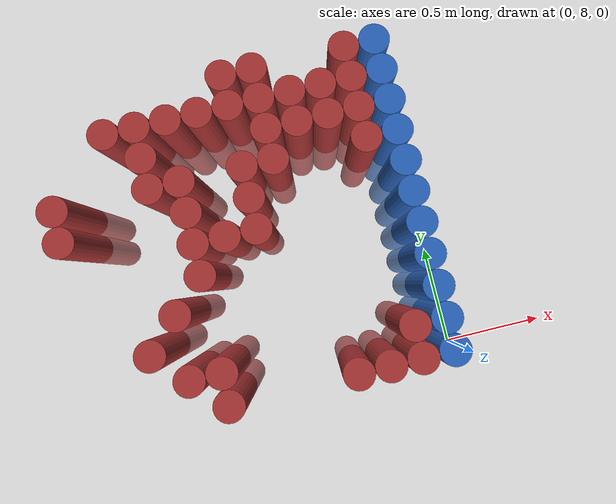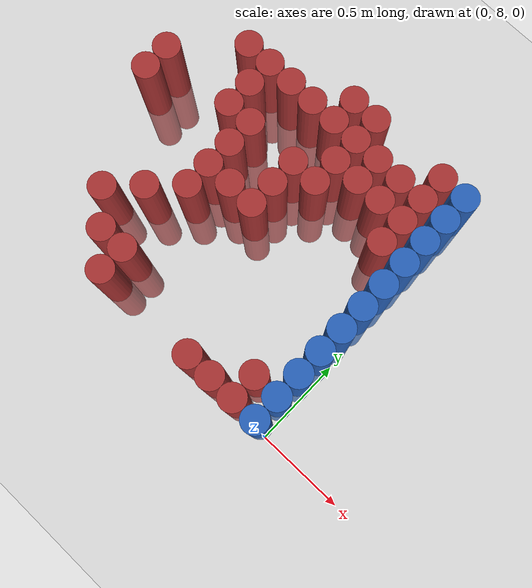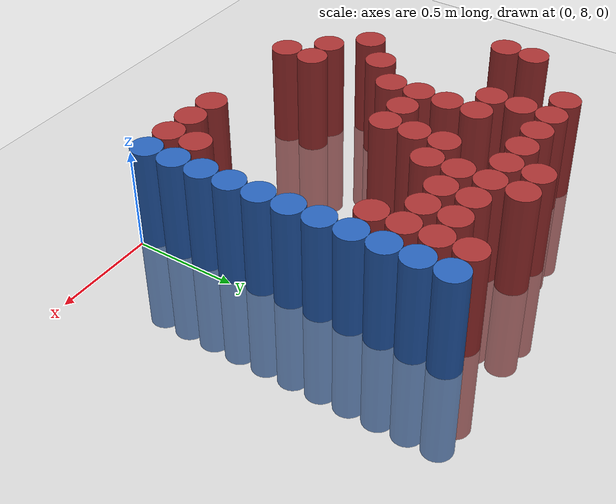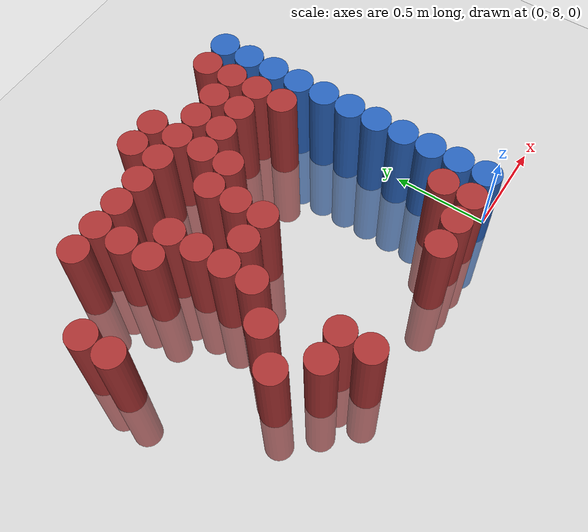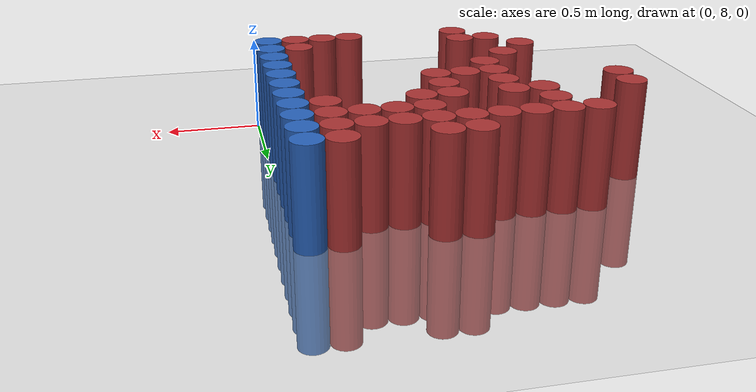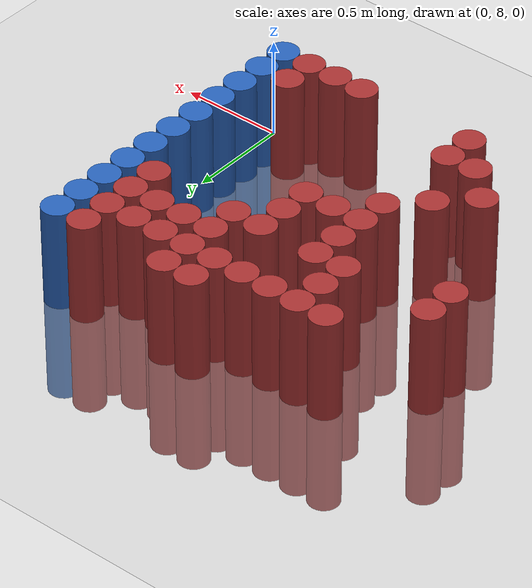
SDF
<sdf version="1.6">
 <world name="default">
  <model name="ground_plane">
   <static>1</static>
   <link name="link">
    <collision name="collision">
     <geometry><plane><normal>0 0 1</normal><size>100 100</size></plane></geometry>
     <surface><friction><ode><mu>100</mu><mu2>50</mu2></ode></friction></surface>
    </collision>
    <visual name="visual">
     <cast_shadows>0</cast_shadows>
     <geometry><plane><normal>0 0 1</normal><size>100 100</size></plane></geometry>
     <material>
      <script><uri>file://media/materials/scripts/gazebo.material</uri><name>Gazebo/Grey</name></script>
     </material>
    </visual>
   </link>
  </model>
  <model name="unit_cylinder_236">
   <static>1</static>
   <pose>-1.725000 8.925000 0.000000 0.000000 0.000000 0.000000</pose>
   <link name="link">
    <inertial>
     <mass>1</mass>
     <inertia><ixx>0.145833</ixx><ixy>0</ixy><ixz>0</ixz><iyy>0.145833</iyy><iyz>0</iyz><izz>0.125</izz></inertia>
    </inertial>
    <collision name="collision">
     <geometry><cylinder><radius>0.075000</radius><length>1</length></cylinder></geometry>
    </collision>
    <visual name="visual">
     <geometry><cylinder><radius>0.075000</radius><length>1</length></cylinder></geometry>
     <material>
      <ambient>0.648000 0.192000 0.192000 1</ambient>
      <diffuse>0.648000 0.192000 0.192000 1</diffuse>
     </material>
     <material>
      <script><name>Gazebo/Grey</name><uri>file://media/materials/scripts/gazebo.material</uri></script>
     </material>
    </visual>
   </link>
  </model>
  <model name="unit_cylinder_237">
   <static>1</static>
   <pose>-1.725000 9.075000 0.000000 0.000000 0.000000 0.000000</pose>
   <link name="link">
    <inertial>
     <mass>1</mass>
     <inertia><ixx>0.145833</ixx><ixy>0</ixy><ixz>0</ixz><iyy>0.145833</iyy><iyz>0</iyz><izz>0.125</izz></inertia>
    </inertial>
    <collision name="collision">
     <geometry><cylinder><radius>0.075000</radius><length>1</length></cylinder></geometry>
    </collision>
    <visual name="visual">
     <geometry><cylinder><radius>0.075000</radius><length>1</length></cylinder></geometry>
     <material>
      <ambient>0.648000 0.192000 0.192000 1</ambient>
      <diffuse>0.648000 0.192000 0.192000 1</diffuse>
     </material>
     <material>
      <script><name>Gazebo/Grey</name><uri>file://media/materials/scripts/gazebo.material</uri></script>
     </material>
    </visual>
   </link>
  </model>
  <model name="unit_cylinder_247">
   <static>1</static>
   <pose>-1.425000 8.325000 0.000000 0.000000 0.000000 0.000000</pose>
   <link name="link">
    <inertial>
     <mass>1</mass>
     <inertia><ixx>0.145833</ixx><ixy>0</ixy><ixz>0</ixz><iyy>0.145833</iyy><iyz>0</iyz><izz>0.125</izz></inertia>
    </inertial>
    <collision name="collision">
     <geometry><cylinder><radius>0.075000</radius><length>1</length></cylinder></geometry>
    </collision>
    <visual name="visual">
     <geometry><cylinder><radius>0.075000</radius><length>1</length></cylinder></geometry>
     <material>
      <ambient>0.648000 0.192000 0.192000 1</ambient>
      <diffuse>0.648000 0.192000 0.192000 1</diffuse>
     </material>
     <material>
      <script><name>Gazebo/Grey</name><uri>file://media/materials/scripts/gazebo.material</uri></script>
     </material>
    </visual>
   </link>
  </model>
  <model name="unit_cylinder_248">
   <static>1</static>
   <pose>-1.425000 9.375000 0.000000 0.000000 0.000000 0.000000</pose>
   <link name="link">
    <inertial>
     <mass>1</mass>
     <inertia><ixx>0.145833</ixx><ixy>0</ixy><ixz>0</ixz><iyy>0.145833</iyy><iyz>0</iyz><izz>0.125</izz></inertia>
    </inertial>
    <collision name="collision">
     <geometry><cylinder><radius>0.075000</radius><length>1</length></cylinder></geometry>
    </collision>
    <visual name="visual">
     <geometry><cylinder><radius>0.075000</radius><length>1</length></cylinder></geometry>
     <material>
      <ambient>0.648000 0.192000 0.192000 1</ambient>
      <diffuse>0.648000 0.192000 0.192000 1</diffuse>
     </material>
     <material>
      <script><name>Gazebo/Grey</name><uri>file://media/materials/scripts/gazebo.material</uri></script>
     </material>
    </visual>
   </link>
  </model>
  <model name="unit_cylinder_252">
   <static>1</static>
   <pose>-1.275000 8.175000 0.000000 0.000000 0.000000 0.000000</pose>
   <link name="link">
    <inertial>
     <mass>1</mass>
     <inertia><ixx>0.145833</ixx><ixy>0</ixy><ixz>0</ixz><iyy>0.145833</iyy><iyz>0</iyz><izz>0.125</izz></inertia>
    </inertial>
    <collision name="collision">
     <geometry><cylinder><radius>0.075000</radius><length>1</length></cylinder></geometry>
    </collision>
    <visual name="visual">
     <geometry><cylinder><radius>0.075000</radius><length>1</length></cylinder></geometry>
     <material>
      <ambient>0.648000 0.192000 0.192000 1</ambient>
      <diffuse>0.648000 0.192000 0.192000 1</diffuse>
     </material>
     <material>
      <script><name>Gazebo/Grey</name><uri>file://media/materials/scripts/gazebo.material</uri></script>
     </material>
    </visual>
   </link>
  </model>
  <model name="unit_cylinder_253">
   <static>1</static>
   <pose>-1.275000 8.475000 0.000000 0.000000 0.000000 0.000000</pose>
   <link name="link">
    <inertial>
     <mass>1</mass>
     <inertia><ixx>0.145833</ixx><ixy>0</ixy><ixz>0</ixz><iyy>0.145833</iyy><iyz>0</iyz><izz>0.125</izz></inertia>
    </inertial>
    <collision name="collision">
     <geometry><cylinder><radius>0.075000</radius><length>1</length></cylinder></geometry>
    </collision>
    <visual name="visual">
     <geometry><cylinder><radius>0.075000</radius><length>1</length></cylinder></geometry>
     <material>
      <ambient>0.648000 0.192000 0.192000 1</ambient>
      <diffuse>0.648000 0.192000 0.192000 1</diffuse>
     </material>
     <material>
      <script><name>Gazebo/Grey</name><uri>file://media/materials/scripts/gazebo.material</uri></script>
     </material>
    </visual>
   </link>
  </model>
  <model name="unit_cylinder_254">
   <static>1</static>
   <pose>-1.275000 9.075000 0.000000 0.000000 0.000000 0.000000</pose>
   <link name="link">
    <inertial>
     <mass>1</mass>
     <inertia><ixx>0.145833</ixx><ixy>0</ixy><ixz>0</ixz><iyy>0.145833</iyy><iyz>0</iyz><izz>0.125</izz></inertia>
    </inertial>
    <collision name="collision">
     <geometry><cylinder><radius>0.075000</radius><length>1</length></cylinder></geometry>
    </collision>
    <visual name="visual">
     <geometry><cylinder><radius>0.075000</radius><length>1</length></cylinder></geometry>
     <material>
      <ambient>0.648000 0.192000 0.192000 1</ambient>
      <diffuse>0.648000 0.192000 0.192000 1</diffuse>
     </material>
     <material>
      <script><name>Gazebo/Grey</name><uri>file://media/materials/scripts/gazebo.material</uri></script>
     </material>
    </visual>
   </link>
  </model>
  <model name="unit_cylinder_255">
   <static>1</static>
   <pose>-1.275000 9.225000 0.000000 0.000000 0.000000 0.000000</pose>
   <link name="link">
    <inertial>
     <mass>1</mass>
     <inertia><ixx>0.145833</ixx><ixy>0</ixy><ixz>0</ixz><iyy>0.145833</iyy><iyz>0</iyz><izz>0.125</izz></inertia>
    </inertial>
    <collision name="collision">
     <geometry><cylinder><radius>0.075000</radius><length>1</length></cylinder></geometry>
    </collision>
    <visual name="visual">
     <geometry><cylinder><radius>0.075000</radius><length>1</length></cylinder></geometry>
     <material>
      <ambient>0.648000 0.192000 0.192000 1</ambient>
      <diffuse>0.648000 0.192000 0.192000 1</diffuse>
     </material>
     <material>
      <script><name>Gazebo/Grey</name><uri>file://media/materials/scripts/gazebo.material</uri></script>
     </material>
    </visual>
   </link>
  </model>
  <model name="unit_cylinder_256">
   <static>1</static>
   <pose>-1.275000 9.375000 0.000000 0.000000 0.000000 0.000000</pose>
   <link name="link">
    <inertial>
     <mass>1</mass>
     <inertia><ixx>0.145833</ixx><ixy>0</ixy><ixz>0</ixz><iyy>0.145833</iyy><iyz>0</iyz><izz>0.125</izz></inertia>
    </inertial>
    <collision name="collision">
     <geometry><cylinder><radius>0.075000</radius><length>1</length></cylinder></geometry>
    </collision>
    <visual name="visual">
     <geometry><cylinder><radius>0.075000</radius><length>1</length></cylinder></geometry>
     <material>
      <ambient>0.648000 0.192000 0.192000 1</ambient>
      <diffuse>0.648000 0.192000 0.192000 1</diffuse>
     </material>
     <material>
      <script><name>Gazebo/Grey</name><uri>file://media/materials/scripts/gazebo.material</uri></script>
     </material>
    </visual>
   </link>
  </model>
  <model name="unit_cylinder_260">
   <static>1</static>
   <pose>-1.125000 8.025000 0.000000 0.000000 0.000000 0.000000</pose>
   <link name="link">
    <inertial>
     <mass>1</mass>
     <inertia><ixx>0.145833</ixx><ixy>0</ixy><ixz>0</ixz><iyy>0.145833</iyy><iyz>0</iyz><izz>0.125</izz></inertia>
    </inertial>
    <collision name="collision">
     <geometry><cylinder><radius>0.075000</radius><length>1</length></cylinder></geometry>
    </collision>
    <visual name="visual">
     <geometry><cylinder><radius>0.075000</radius><length>1</length></cylinder></geometry>
     <material>
      <ambient>0.648000 0.192000 0.192000 1</ambient>
      <diffuse>0.648000 0.192000 0.192000 1</diffuse>
     </material>
     <material>
      <script><name>Gazebo/Grey</name><uri>file://media/materials/scripts/gazebo.material</uri></script>
     </material>
    </visual>
   </link>
  </model>
  <model name="unit_cylinder_261">
   <static>1</static>
   <pose>-1.125000 8.175000 0.000000 0.000000 0.000000 0.000000</pose>
   <link name="link">
    <inertial>
     <mass>1</mass>
     <inertia><ixx>0.145833</ixx><ixy>0</ixy><ixz>0</ixz><iyy>0.145833</iyy><iyz>0</iyz><izz>0.125</izz></inertia>
    </inertial>
    <collision name="collision">
     <geometry><cylinder><radius>0.075000</radius><length>1</length></cylinder></geometry>
    </collision>
    <visual name="visual">
     <geometry><cylinder><radius>0.075000</radius><length>1</length></cylinder></geometry>
     <material>
      <ambient>0.648000 0.192000 0.192000 1</ambient>
      <diffuse>0.648000 0.192000 0.192000 1</diffuse>
     </material>
     <material>
      <script><name>Gazebo/Grey</name><uri>file://media/materials/scripts/gazebo.material</uri></script>
     </material>
    </visual>
   </link>
  </model>
  <model name="unit_cylinder_262">
   <static>1</static>
   <pose>-1.125000 8.625000 0.000000 0.000000 0.000000 0.000000</pose>
   <link name="link">
    <inertial>
     <mass>1</mass>
     <inertia><ixx>0.145833</ixx><ixy>0</ixy><ixz>0</ixz><iyy>0.145833</iyy><iyz>0</iyz><izz>0.125</izz></inertia>
    </inertial>
    <collision name="collision">
     <geometry><cylinder><radius>0.075000</radius><length>1</length></cylinder></geometry>
    </collision>
    <visual name="visual">
     <geometry><cylinder><radius>0.075000</radius><length>1</length></cylinder></geometry>
     <material>
      <ambient>0.648000 0.192000 0.192000 1</ambient>
      <diffuse>0.648000 0.192000 0.192000 1</diffuse>
     </material>
     <material>
      <script><name>Gazebo/Grey</name><uri>file://media/materials/scripts/gazebo.material</uri></script>
     </material>
    </visual>
   </link>
  </model>
  <model name="unit_cylinder_263">
   <static>1</static>
   <pose>-1.125000 8.775000 0.000000 0.000000 0.000000 0.000000</pose>
   <link name="link">
    <inertial>
     <mass>1</mass>
     <inertia><ixx>0.145833</ixx><ixy>0</ixy><ixz>0</ixz><iyy>0.145833</iyy><iyz>0</iyz><izz>0.125</izz></inertia>
    </inertial>
    <collision name="collision">
     <geometry><cylinder><radius>0.075000</radius><length>1</length></cylinder></geometry>
    </collision>
    <visual name="visual">
     <geometry><cylinder><radius>0.075000</radius><length>1</length></cylinder></geometry>
     <material>
      <ambient>0.648000 0.192000 0.192000 1</ambient>
      <diffuse>0.648000 0.192000 0.192000 1</diffuse>
     </material>
     <material>
      <script><name>Gazebo/Grey</name><uri>file://media/materials/scripts/gazebo.material</uri></script>
     </material>
    </visual>
   </link>
  </model>
  <model name="unit_cylinder_264">
   <static>1</static>
   <pose>-1.125000 8.925000 0.000000 0.000000 0.000000 0.000000</pose>
   <link name="link">
    <inertial>
     <mass>1</mass>
     <inertia><ixx>0.145833</ixx><ixy>0</ixy><ixz>0</ixz><iyy>0.145833</iyy><iyz>0</iyz><izz>0.125</izz></inertia>
    </inertial>
    <collision name="collision">
     <geometry><cylinder><radius>0.075000</radius><length>1</length></cylinder></geometry>
    </collision>
    <visual name="visual">
     <geometry><cylinder><radius>0.075000</radius><length>1</length></cylinder></geometry>
     <material>
      <ambient>0.648000 0.192000 0.192000 1</ambient>
      <diffuse>0.648000 0.192000 0.192000 1</diffuse>
     </material>
     <material>
      <script><name>Gazebo/Grey</name><uri>file://media/materials/scripts/gazebo.material</uri></script>
     </material>
    </visual>
   </link>
  </model>
  <model name="unit_cylinder_265">
   <static>1</static>
   <pose>-1.125000 9.075000 0.000000 0.000000 0.000000 0.000000</pose>
   <link name="link">
    <inertial>
     <mass>1</mass>
     <inertia><ixx>0.145833</ixx><ixy>0</ixy><ixz>0</ixz><iyy>0.145833</iyy><iyz>0</iyz><izz>0.125</izz></inertia>
    </inertial>
    <collision name="collision">
     <geometry><cylinder><radius>0.075000</radius><length>1</length></cylinder></geometry>
    </collision>
    <visual name="visual">
     <geometry><cylinder><radius>0.075000</radius><length>1</length></cylinder></geometry>
     <material>
      <ambient>0.648000 0.192000 0.192000 1</ambient>
      <diffuse>0.648000 0.192000 0.192000 1</diffuse>
     </material>
     <material>
      <script><name>Gazebo/Grey</name><uri>file://media/materials/scripts/gazebo.material</uri></script>
     </material>
    </visual>
   </link>
  </model>
  <model name="unit_cylinder_266">
   <static>1</static>
   <pose>-1.125000 9.375000 0.000000 0.000000 0.000000 0.000000</pose>
   <link name="link">
    <inertial>
     <mass>1</mass>
     <inertia><ixx>0.145833</ixx><ixy>0</ixy><ixz>0</ixz><iyy>0.145833</iyy><iyz>0</iyz><izz>0.125</izz></inertia>
    </inertial>
    <collision name="collision">
     <geometry><cylinder><radius>0.075000</radius><length>1</length></cylinder></geometry>
    </collision>
    <visual name="visual">
     <geometry><cylinder><radius>0.075000</radius><length>1</length></cylinder></geometry>
     <material>
      <ambient>0.648000 0.192000 0.192000 1</ambient>
      <diffuse>0.648000 0.192000 0.192000 1</diffuse>
     </material>
     <material>
      <script><name>Gazebo/Grey</name><uri>file://media/materials/scripts/gazebo.material</uri></script>
     </material>
    </visual>
   </link>
  </model>
  <model name="unit_cylinder_271">
   <static>1</static>
   <pose>-0.975000 8.775000 0.000000 0.000000 0.000000 0.000000</pose>
   <link name="link">
    <inertial>
     <mass>1</mass>
     <inertia><ixx>0.145833</ixx><ixy>0</ixy><ixz>0</ixz><iyy>0.145833</iyy><iyz>0</iyz><izz>0.125</izz></inertia>
    </inertial>
    <collision name="collision">
     <geometry><cylinder><radius>0.075000</radius><length>1</length></cylinder></geometry>
    </collision>
    <visual name="visual">
     <geometry><cylinder><radius>0.075000</radius><length>1</length></cylinder></geometry>
     <material>
      <ambient>0.648000 0.192000 0.192000 1</ambient>
      <diffuse>0.648000 0.192000 0.192000 1</diffuse>
     </material>
     <material>
      <script><name>Gazebo/Grey</name><uri>file://media/materials/scripts/gazebo.material</uri></script>
     </material>
    </visual>
   </link>
  </model>
  <model name="unit_cylinder_272">
   <static>1</static>
   <pose>-0.975000 9.375000 0.000000 0.000000 0.000000 0.000000</pose>
   <link name="link">
    <inertial>
     <mass>1</mass>
     <inertia><ixx>0.145833</ixx><ixy>0</ixy><ixz>0</ixz><iyy>0.145833</iyy><iyz>0</iyz><izz>0.125</izz></inertia>
    </inertial>
    <collision name="collision">
     <geometry><cylinder><radius>0.075000</radius><length>1</length></cylinder></geometry>
    </collision>
    <visual name="visual">
     <geometry><cylinder><radius>0.075000</radius><length>1</length></cylinder></geometry>
     <material>
      <ambient>0.648000 0.192000 0.192000 1</ambient>
      <diffuse>0.648000 0.192000 0.192000 1</diffuse>
     </material>
     <material>
      <script><name>Gazebo/Grey</name><uri>file://media/materials/scripts/gazebo.material</uri></script>
     </material>
    </visual>
   </link>
  </model>
  <model name="unit_cylinder_278">
   <static>1</static>
   <pose>-0.825000 8.775000 0.000000 0.000000 0.000000 0.000000</pose>
   <link name="link">
    <inertial>
     <mass>1</mass>
     <inertia><ixx>0.145833</ixx><ixy>0</ixy><ixz>0</ixz><iyy>0.145833</iyy><iyz>0</iyz><izz>0.125</izz></inertia>
    </inertial>
    <collision name="collision">
     <geometry><cylinder><radius>0.075000</radius><length>1</length></cylinder></geometry>
    </collision>
    <visual name="visual">
     <geometry><cylinder><radius>0.075000</radius><length>1</length></cylinder></geometry>
     <material>
      <ambient>0.648000 0.192000 0.192000 1</ambient>
      <diffuse>0.648000 0.192000 0.192000 1</diffuse>
     </material>
     <material>
      <script><name>Gazebo/Grey</name><uri>file://media/materials/scripts/gazebo.material</uri></script>
     </material>
    </visual>
   </link>
  </model>
  <model name="unit_cylinder_279">
   <static>1</static>
   <pose>-0.825000 8.925000 0.000000 0.000000 0.000000 0.000000</pose>
   <link name="link">
    <inertial>
     <mass>1</mass>
     <inertia><ixx>0.145833</ixx><ixy>0</ixy><ixz>0</ixz><iyy>0.145833</iyy><iyz>0</iyz><izz>0.125</izz></inertia>
    </inertial>
    <collision name="collision">
     <geometry><cylinder><radius>0.075000</radius><length>1</length></cylinder></geometry>
    </collision>
    <visual name="visual">
     <geometry><cylinder><radius>0.075000</radius><length>1</length></cylinder></geometry>
     <material>
      <ambient>0.648000 0.192000 0.192000 1</ambient>
      <diffuse>0.648000 0.192000 0.192000 1</diffuse>
     </material>
     <material>
      <script><name>Gazebo/Grey</name><uri>file://media/materials/scripts/gazebo.material</uri></script>
     </material>
    </visual>
   </link>
  </model>
  <model name="unit_cylinder_280">
   <static>1</static>
   <pose>-0.825000 9.075000 0.000000 0.000000 0.000000 0.000000</pose>
   <link name="link">
    <inertial>
     <mass>1</mass>
     <inertia><ixx>0.145833</ixx><ixy>0</ixy><ixz>0</ixz><iyy>0.145833</iyy><iyz>0</iyz><izz>0.125</izz></inertia>
    </inertial>
    <collision name="collision">
     <geometry><cylinder><radius>0.075000</radius><length>1</length></cylinder></geometry>
    </collision>
    <visual name="visual">
     <geometry><cylinder><radius>0.075000</radius><length>1</length></cylinder></geometry>
     <material>
      <ambient>0.648000 0.192000 0.192000 1</ambient>
      <diffuse>0.648000 0.192000 0.192000 1</diffuse>
     </material>
     <material>
      <script><name>Gazebo/Grey</name><uri>file://media/materials/scripts/gazebo.material</uri></script>
     </material>
    </visual>
   </link>
  </model>
  <model name="unit_cylinder_281">
   <static>1</static>
   <pose>-0.825000 9.375000 0.000000 0.000000 0.000000 0.000000</pose>
   <link name="link">
    <inertial>
     <mass>1</mass>
     <inertia><ixx>0.145833</ixx><ixy>0</ixy><ixz>0</ixz><iyy>0.145833</iyy><iyz>0</iyz><izz>0.125</izz></inertia>
    </inertial>
    <collision name="collision">
     <geometry><cylinder><radius>0.075000</radius><length>1</length></cylinder></geometry>
    </collision>
    <visual name="visual">
     <geometry><cylinder><radius>0.075000</radius><length>1</length></cylinder></geometry>
     <material>
      <ambient>0.648000 0.192000 0.192000 1</ambient>
      <diffuse>0.648000 0.192000 0.192000 1</diffuse>
     </material>
     <material>
      <script><name>Gazebo/Grey</name><uri>file://media/materials/scripts/gazebo.material</uri></script>
     </material>
    </visual>
   </link>
  </model>
  <model name="unit_cylinder_282">
   <static>1</static>
   <pose>-0.825000 9.525000 0.000000 0.000000 0.000000 0.000000</pose>
   <link name="link">
    <inertial>
     <mass>1</mass>
     <inertia><ixx>0.145833</ixx><ixy>0</ixy><ixz>0</ixz><iyy>0.145833</iyy><iyz>0</iyz><izz>0.125</izz></inertia>
    </inertial>
    <collision name="collision">
     <geometry><cylinder><radius>0.075000</radius><length>1</length></cylinder></geometry>
    </collision>
    <visual name="visual">
     <geometry><cylinder><radius>0.075000</radius><length>1</length></cylinder></geometry>
     <material>
      <ambient>0.648000 0.192000 0.192000 1</ambient>
      <diffuse>0.648000 0.192000 0.192000 1</diffuse>
     </material>
     <material>
      <script><name>Gazebo/Grey</name><uri>file://media/materials/scripts/gazebo.material</uri></script>
     </material>
    </visual>
   </link>
  </model>
  <model name="unit_cylinder_289">
   <static>1</static>
   <pose>-0.675000 9.075000 0.000000 0.000000 0.000000 0.000000</pose>
   <link name="link">
    <inertial>
     <mass>1</mass>
     <inertia><ixx>0.145833</ixx><ixy>0</ixy><ixz>0</ixz><iyy>0.145833</iyy><iyz>0</iyz><izz>0.125</izz></inertia>
    </inertial>
    <collision name="collision">
     <geometry><cylinder><radius>0.075000</radius><length>1</length></cylinder></geometry>
    </collision>
    <visual name="visual">
     <geometry><cylinder><radius>0.075000</radius><length>1</length></cylinder></geometry>
     <material>
      <ambient>0.648000 0.192000 0.192000 1</ambient>
      <diffuse>0.648000 0.192000 0.192000 1</diffuse>
     </material>
     <material>
      <script><name>Gazebo/Grey</name><uri>file://media/materials/scripts/gazebo.material</uri></script>
     </material>
    </visual>
   </link>
  </model>
  <model name="unit_cylinder_290">
   <static>1</static>
   <pose>-0.675000 9.225000 0.000000 0.000000 0.000000 0.000000</pose>
   <link name="link">
    <inertial>
     <mass>1</mass>
     <inertia><ixx>0.145833</ixx><ixy>0</ixy><ixz>0</ixz><iyy>0.145833</iyy><iyz>0</iyz><izz>0.125</izz></inertia>
    </inertial>
    <collision name="collision">
     <geometry><cylinder><radius>0.075000</radius><length>1</length></cylinder></geometry>
    </collision>
    <visual name="visual">
     <geometry><cylinder><radius>0.075000</radius><length>1</length></cylinder></geometry>
     <material>
      <ambient>0.648000 0.192000 0.192000 1</ambient>
      <diffuse>0.648000 0.192000 0.192000 1</diffuse>
     </material>
     <material>
      <script><name>Gazebo/Grey</name><uri>file://media/materials/scripts/gazebo.material</uri></script>
     </material>
    </visual>
   </link>
  </model>
  <model name="unit_cylinder_291">
   <static>1</static>
   <pose>-0.675000 9.375000 0.000000 0.000000 0.000000 0.000000</pose>
   <link name="link">
    <inertial>
     <mass>1</mass>
     <inertia><ixx>0.145833</ixx><ixy>0</ixy><ixz>0</ixz><iyy>0.145833</iyy><iyz>0</iyz><izz>0.125</izz></inertia>
    </inertial>
    <collision name="collision">
     <geometry><cylinder><radius>0.075000</radius><length>1</length></cylinder></geometry>
    </collision>
    <visual name="visual">
     <geometry><cylinder><radius>0.075000</radius><length>1</length></cylinder></geometry>
     <material>
      <ambient>0.648000 0.192000 0.192000 1</ambient>
      <diffuse>0.648000 0.192000 0.192000 1</diffuse>
     </material>
     <material>
      <script><name>Gazebo/Grey</name><uri>file://media/materials/scripts/gazebo.material</uri></script>
     </material>
    </visual>
   </link>
  </model>
  <model name="unit_cylinder_292">
   <static>1</static>
   <pose>-0.675000 9.525000 0.000000 0.000000 0.000000 0.000000</pose>
   <link name="link">
    <inertial>
     <mass>1</mass>
     <inertia><ixx>0.145833</ixx><ixy>0</ixy><ixz>0</ixz><iyy>0.145833</iyy><iyz>0</iyz><izz>0.125</izz></inertia>
    </inertial>
    <collision name="collision">
     <geometry><cylinder><radius>0.075000</radius><length>1</length></cylinder></geometry>
    </collision>
    <visual name="visual">
     <geometry><cylinder><radius>0.075000</radius><length>1</length></cylinder></geometry>
     <material>
      <ambient>0.648000 0.192000 0.192000 1</ambient>
      <diffuse>0.648000 0.192000 0.192000 1</diffuse>
     </material>
     <material>
      <script><name>Gazebo/Grey</name><uri>file://media/materials/scripts/gazebo.material</uri></script>
     </material>
    </visual>
   </link>
  </model>
  <model name="unit_cylinder_297">
   <static>1</static>
   <pose>-0.525000 8.025000 0.000000 0.000000 0.000000 0.000000</pose>
   <link name="link">
    <inertial>
     <mass>1</mass>
     <inertia><ixx>0.145833</ixx><ixy>0</ixy><ixz>0</ixz><iyy>0.145833</iyy><iyz>0</iyz><izz>0.125</izz></inertia>
    </inertial>
    <collision name="collision">
     <geometry><cylinder><radius>0.075000</radius><length>1</length></cylinder></geometry>
    </collision>
    <visual name="visual">
     <geometry><cylinder><radius>0.075000</radius><length>1</length></cylinder></geometry>
     <material>
      <ambient>0.648000 0.192000 0.192000 1</ambient>
      <diffuse>0.648000 0.192000 0.192000 1</diffuse>
     </material>
     <material>
      <script><name>Gazebo/Grey</name><uri>file://media/materials/scripts/gazebo.material</uri></script>
     </material>
    </visual>
   </link>
  </model>
  <model name="unit_cylinder_298">
   <static>1</static>
   <pose>-0.525000 9.225000 0.000000 0.000000 0.000000 0.000000</pose>
   <link name="link">
    <inertial>
     <mass>1</mass>
     <inertia><ixx>0.145833</ixx><ixy>0</ixy><ixz>0</ixz><iyy>0.145833</iyy><iyz>0</iyz><izz>0.125</izz></inertia>
    </inertial>
    <collision name="collision">
     <geometry><cylinder><radius>0.075000</radius><length>1</length></cylinder></geometry>
    </collision>
    <visual name="visual">
     <geometry><cylinder><radius>0.075000</radius><length>1</length></cylinder></geometry>
     <material>
      <ambient>0.648000 0.192000 0.192000 1</ambient>
      <diffuse>0.648000 0.192000 0.192000 1</diffuse>
     </material>
     <material>
      <script><name>Gazebo/Grey</name><uri>file://media/materials/scripts/gazebo.material</uri></script>
     </material>
    </visual>
   </link>
  </model>
  <model name="unit_cylinder_299">
   <static>1</static>
   <pose>-0.525000 9.375000 0.000000 0.000000 0.000000 0.000000</pose>
   <link name="link">
    <inertial>
     <mass>1</mass>
     <inertia><ixx>0.145833</ixx><ixy>0</ixy><ixz>0</ixz><iyy>0.145833</iyy><iyz>0</iyz><izz>0.125</izz></inertia>
    </inertial>
    <collision name="collision">
     <geometry><cylinder><radius>0.075000</radius><length>1</length></cylinder></geometry>
    </collision>
    <visual name="visual">
     <geometry><cylinder><radius>0.075000</radius><length>1</length></cylinder></geometry>
     <material>
      <ambient>0.648000 0.192000 0.192000 1</ambient>
      <diffuse>0.648000 0.192000 0.192000 1</diffuse>
     </material>
     <material>
      <script><name>Gazebo/Grey</name><uri>file://media/materials/scripts/gazebo.material</uri></script>
     </material>
    </visual>
   </link>
  </model>
  <model name="unit_cylinder_304">
   <static>1</static>
   <pose>-0.375000 8.025000 0.000000 0.000000 0.000000 0.000000</pose>
   <link name="link">
    <inertial>
     <mass>1</mass>
     <inertia><ixx>0.145833</ixx><ixy>0</ixy><ixz>0</ixz><iyy>0.145833</iyy><iyz>0</iyz><izz>0.125</izz></inertia>
    </inertial>
    <collision name="collision">
     <geometry><cylinder><radius>0.075000</radius><length>1</length></cylinder></geometry>
    </collision>
    <visual name="visual">
     <geometry><cylinder><radius>0.075000</radius><length>1</length></cylinder></geometry>
     <material>
      <ambient>0.648000 0.192000 0.192000 1</ambient>
      <diffuse>0.648000 0.192000 0.192000 1</diffuse>
     </material>
     <material>
      <script><name>Gazebo/Grey</name><uri>file://media/materials/scripts/gazebo.material</uri></script>
     </material>
    </visual>
   </link>
  </model>
  <model name="unit_cylinder_305">
   <static>1</static>
   <pose>-0.375000 9.225000 0.000000 0.000000 0.000000 0.000000</pose>
   <link name="link">
    <inertial>
     <mass>1</mass>
     <inertia><ixx>0.145833</ixx><ixy>0</ixy><ixz>0</ixz><iyy>0.145833</iyy><iyz>0</iyz><izz>0.125</izz></inertia>
    </inertial>
    <collision name="collision">
     <geometry><cylinder><radius>0.075000</radius><length>1</length></cylinder></geometry>
    </collision>
    <visual name="visual">
     <geometry><cylinder><radius>0.075000</radius><length>1</length></cylinder></geometry>
     <material>
      <ambient>0.648000 0.192000 0.192000 1</ambient>
      <diffuse>0.648000 0.192000 0.192000 1</diffuse>
     </material>
     <material>
      <script><name>Gazebo/Grey</name><uri>file://media/materials/scripts/gazebo.material</uri></script>
     </material>
    </visual>
   </link>
  </model>
  <model name="unit_cylinder_306">
   <static>1</static>
   <pose>-0.375000 9.375000 0.000000 0.000000 0.000000 0.000000</pose>
   <link name="link">
    <inertial>
     <mass>1</mass>
     <inertia><ixx>0.145833</ixx><ixy>0</ixy><ixz>0</ixz><iyy>0.145833</iyy><iyz>0</iyz><izz>0.125</izz></inertia>
    </inertial>
    <collision name="collision">
     <geometry><cylinder><radius>0.075000</radius><length>1</length></cylinder></geometry>
    </collision>
    <visual name="visual">
     <geometry><cylinder><radius>0.075000</radius><length>1</length></cylinder></geometry>
     <material>
      <ambient>0.648000 0.192000 0.192000 1</ambient>
      <diffuse>0.648000 0.192000 0.192000 1</diffuse>
     </material>
     <material>
      <script><name>Gazebo/Grey</name><uri>file://media/materials/scripts/gazebo.material</uri></script>
     </material>
    </visual>
   </link>
  </model>
  <model name="unit_cylinder_313">
   <static>1</static>
   <pose>-0.225000 8.025000 0.000000 0.000000 0.000000 0.000000</pose>
   <link name="link">
    <inertial>
     <mass>1</mass>
     <inertia><ixx>0.145833</ixx><ixy>0</ixy><ixz>0</ixz><iyy>0.145833</iyy><iyz>0</iyz><izz>0.125</izz></inertia>
    </inertial>
    <collision name="collision">
     <geometry><cylinder><radius>0.075000</radius><length>1</length></cylinder></geometry>
    </collision>
    <visual name="visual">
     <geometry><cylinder><radius>0.075000</radius><length>1</length></cylinder></geometry>
     <material>
      <ambient>0.648000 0.192000 0.192000 1</ambient>
      <diffuse>0.648000 0.192000 0.192000 1</diffuse>
     </material>
     <material>
      <script><name>Gazebo/Grey</name><uri>file://media/materials/scripts/gazebo.material</uri></script>
     </material>
    </visual>
   </link>
  </model>
  <model name="unit_cylinder_314">
   <static>1</static>
   <pose>-0.225000 8.175000 0.000000 0.000000 0.000000 0.000000</pose>
   <link name="link">
    <inertial>
     <mass>1</mass>
     <inertia><ixx>0.145833</ixx><ixy>0</ixy><ixz>0</ixz><iyy>0.145833</iyy><iyz>0</iyz><izz>0.125</izz></inertia>
    </inertial>
    <collision name="collision">
     <geometry><cylinder><radius>0.075000</radius><length>1</length></cylinder></geometry>
    </collision>
    <visual name="visual">
     <geometry><cylinder><radius>0.075000</radius><length>1</length></cylinder></geometry>
     <material>
      <ambient>0.648000 0.192000 0.192000 1</ambient>
      <diffuse>0.648000 0.192000 0.192000 1</diffuse>
     </material>
     <material>
      <script><name>Gazebo/Grey</name><uri>file://media/materials/scripts/gazebo.material</uri></script>
     </material>
    </visual>
   </link>
  </model>
  <model name="unit_cylinder_315">
   <static>1</static>
   <pose>-0.225000 9.075000 0.000000 0.000000 0.000000 0.000000</pose>
   <link name="link">
    <inertial>
     <mass>1</mass>
     <inertia><ixx>0.145833</ixx><ixy>0</ixy><ixz>0</ixz><iyy>0.145833</iyy><iyz>0</iyz><izz>0.125</izz></inertia>
    </inertial>
    <collision name="collision">
     <geometry><cylinder><radius>0.075000</radius><length>1</length></cylinder></geometry>
    </collision>
    <visual name="visual">
     <geometry><cylinder><radius>0.075000</radius><length>1</length></cylinder></geometry>
     <material>
      <ambient>0.648000 0.192000 0.192000 1</ambient>
      <diffuse>0.648000 0.192000 0.192000 1</diffuse>
     </material>
     <material>
      <script><name>Gazebo/Grey</name><uri>file://media/materials/scripts/gazebo.material</uri></script>
     </material>
    </visual>
   </link>
  </model>
  <model name="unit_cylinder_316">
   <static>1</static>
   <pose>-0.225000 9.225000 0.000000 0.000000 0.000000 0.000000</pose>
   <link name="link">
    <inertial>
     <mass>1</mass>
     <inertia><ixx>0.145833</ixx><ixy>0</ixy><ixz>0</ixz><iyy>0.145833</iyy><iyz>0</iyz><izz>0.125</izz></inertia>
    </inertial>
    <collision name="collision">
     <geometry><cylinder><radius>0.075000</radius><length>1</length></cylinder></geometry>
    </collision>
    <visual name="visual">
     <geometry><cylinder><radius>0.075000</radius><length>1</length></cylinder></geometry>
     <material>
      <ambient>0.648000 0.192000 0.192000 1</ambient>
      <diffuse>0.648000 0.192000 0.192000 1</diffuse>
     </material>
     <material>
      <script><name>Gazebo/Grey</name><uri>file://media/materials/scripts/gazebo.material</uri></script>
     </material>
    </visual>
   </link>
  </model>
  <model name="unit_cylinder_317">
   <static>1</static>
   <pose>-0.225000 9.375000 0.000000 0.000000 0.000000 0.000000</pose>
   <link name="link">
    <inertial>
     <mass>1</mass>
     <inertia><ixx>0.145833</ixx><ixy>0</ixy><ixz>0</ixz><iyy>0.145833</iyy><iyz>0</iyz><izz>0.125</izz></inertia>
    </inertial>
    <collision name="collision">
     <geometry><cylinder><radius>0.075000</radius><length>1</length></cylinder></geometry>
    </collision>
    <visual name="visual">
     <geometry><cylinder><radius>0.075000</radius><length>1</length></cylinder></geometry>
     <material>
      <ambient>0.648000 0.192000 0.192000 1</ambient>
      <diffuse>0.648000 0.192000 0.192000 1</diffuse>
     </material>
     <material>
      <script><name>Gazebo/Grey</name><uri>file://media/materials/scripts/gazebo.material</uri></script>
     </material>
    </visual>
   </link>
  </model>
  <model name="unit_cylinder_318">
   <static>1</static>
   <pose>-0.225000 9.525000 0.000000 0.000000 0.000000 0.000000</pose>
   <link name="link">
    <inertial>
     <mass>1</mass>
     <inertia><ixx>0.145833</ixx><ixy>0</ixy><ixz>0</ixz><iyy>0.145833</iyy><iyz>0</iyz><izz>0.125</izz></inertia>
    </inertial>
    <collision name="collision">
     <geometry><cylinder><radius>0.075000</radius><length>1</length></cylinder></geometry>
    </collision>
    <visual name="visual">
     <geometry><cylinder><radius>0.075000</radius><length>1</length></cylinder></geometry>
     <material>
      <ambient>0.648000 0.192000 0.192000 1</ambient>
      <diffuse>0.648000 0.192000 0.192000 1</diffuse>
     </material>
     <material>
      <script><name>Gazebo/Grey</name><uri>file://media/materials/scripts/gazebo.material</uri></script>
     </material>
    </visual>
   </link>
  </model>
  <model name="unit_cylinder_338">
   <static>1</static>
   <pose>-0.075000 8.025000 0.000000 0.000000 0.000000 0.000000</pose>
   <link name="link">
    <inertial>
     <mass>1</mass>
     <inertia><ixx>0.145833</ixx><ixy>0</ixy><ixz>0</ixz><iyy>0.145833</iyy><iyz>0</iyz><izz>0.125</izz></inertia>
    </inertial>
    <collision name="collision">
     <geometry><cylinder><radius>0.075000</radius><length>1</length></cylinder></geometry>
    </collision>
    <visual name="visual">
     <geometry><cylinder><radius>0.075000</radius><length>1</length></cylinder></geometry>
     <material>
      <ambient>0.152000 0.379000 0.720000 1</ambient>
      <diffuse>0.152000 0.379000 0.720000 1</diffuse>
     </material>
     <material>
      <script><name>Gazebo/Grey</name><uri>file://media/materials/scripts/gazebo.material</uri></script>
     </material>
    </visual>
   </link>
  </model>
  <model name="unit_cylinder_339">
   <static>1</static>
   <pose>-0.075000 8.175000 0.000000 0.000000 0.000000 0.000000</pose>
   <link name="link">
    <inertial>
     <mass>1</mass>
     <inertia><ixx>0.145833</ixx><ixy>0</ixy><ixz>0</ixz><iyy>0.145833</iyy><iyz>0</iyz><izz>0.125</izz></inertia>
    </inertial>
    <collision name="collision">
     <geometry><cylinder><radius>0.075000</radius><length>1</length></cylinder></geometry>
    </collision>
    <visual name="visual">
     <geometry><cylinder><radius>0.075000</radius><length>1</length></cylinder></geometry>
     <material>
      <ambient>0.152000 0.379000 0.720000 1</ambient>
      <diffuse>0.152000 0.379000 0.720000 1</diffuse>
     </material>
     <material>
      <script><name>Gazebo/Grey</name><uri>file://media/materials/scripts/gazebo.material</uri></script>
     </material>
    </visual>
   </link>
  </model>
  <model name="unit_cylinder_340">
   <static>1</static>
   <pose>-0.075000 8.325000 0.000000 0.000000 0.000000 0.000000</pose>
   <link name="link">
    <inertial>
     <mass>1</mass>
     <inertia><ixx>0.145833</ixx><ixy>0</ixy><ixz>0</ixz><iyy>0.145833</iyy><iyz>0</iyz><izz>0.125</izz></inertia>
    </inertial>
    <collision name="collision">
     <geometry><cylinder><radius>0.075000</radius><length>1</length></cylinder></geometry>
    </collision>
    <visual name="visual">
     <geometry><cylinder><radius>0.075000</radius><length>1</length></cylinder></geometry>
     <material>
      <ambient>0.152000 0.379000 0.720000 1</ambient>
      <diffuse>0.152000 0.379000 0.720000 1</diffuse>
     </material>
     <material>
      <script><name>Gazebo/Grey</name><uri>file://media/materials/scripts/gazebo.material</uri></script>
     </material>
    </visual>
   </link>
  </model>
  <model name="unit_cylinder_341">
   <static>1</static>
   <pose>-0.075000 8.475000 0.000000 0.000000 0.000000 0.000000</pose>
   <link name="link">
    <inertial>
     <mass>1</mass>
     <inertia><ixx>0.145833</ixx><ixy>0</ixy><ixz>0</ixz><iyy>0.145833</iyy><iyz>0</iyz><izz>0.125</izz></inertia>
    </inertial>
    <collision name="collision">
     <geometry><cylinder><radius>0.075000</radius><length>1</length></cylinder></geometry>
    </collision>
    <visual name="visual">
     <geometry><cylinder><radius>0.075000</radius><length>1</length></cylinder></geometry>
     <material>
      <ambient>0.152000 0.379000 0.720000 1</ambient>
      <diffuse>0.152000 0.379000 0.720000 1</diffuse>
     </material>
     <material>
      <script><name>Gazebo/Grey</name><uri>file://media/materials/scripts/gazebo.material</uri></script>
     </material>
    </visual>
   </link>
  </model>
  <model name="unit_cylinder_342">
   <static>1</static>
   <pose>-0.075000 8.625000 0.000000 0.000000 0.000000 0.000000</pose>
   <link name="link">
    <inertial>
     <mass>1</mass>
     <inertia><ixx>0.145833</ixx><ixy>0</ixy><ixz>0</ixz><iyy>0.145833</iyy><iyz>0</iyz><izz>0.125</izz></inertia>
    </inertial>
    <collision name="collision">
     <geometry><cylinder><radius>0.075000</radius><length>1</length></cylinder></geometry>
    </collision>
    <visual name="visual">
     <geometry><cylinder><radius>0.075000</radius><length>1</length></cylinder></geometry>
     <material>
      <ambient>0.152000 0.379000 0.720000 1</ambient>
      <diffuse>0.152000 0.379000 0.720000 1</diffuse>
     </material>
     <material>
      <script><name>Gazebo/Grey</name><uri>file://media/materials/scripts/gazebo.material</uri></script>
     </material>
    </visual>
   </link>
  </model>
  <model name="unit_cylinder_343">
   <static>1</static>
   <pose>-0.075000 8.775000 0.000000 0.000000 0.000000 0.000000</pose>
   <link name="link">
    <inertial>
     <mass>1</mass>
     <inertia><ixx>0.145833</ixx><ixy>0</ixy><ixz>0</ixz><iyy>0.145833</iyy><iyz>0</iyz><izz>0.125</izz></inertia>
    </inertial>
    <collision name="collision">
     <geometry><cylinder><radius>0.075000</radius><length>1</length></cylinder></geometry>
    </collision>
    <visual name="visual">
     <geometry><cylinder><radius>0.075000</radius><length>1</length></cylinder></geometry>
     <material>
      <ambient>0.152000 0.379000 0.720000 1</ambient>
      <diffuse>0.152000 0.379000 0.720000 1</diffuse>
     </material>
     <material>
      <script><name>Gazebo/Grey</name><uri>file://media/materials/scripts/gazebo.material</uri></script>
     </material>
    </visual>
   </link>
  </model>
  <model name="unit_cylinder_344">
   <static>1</static>
   <pose>-0.075000 8.925000 0.000000 0.000000 0.000000 0.000000</pose>
   <link name="link">
    <inertial>
     <mass>1</mass>
     <inertia><ixx>0.145833</ixx><ixy>0</ixy><ixz>0</ixz><iyy>0.145833</iyy><iyz>0</iyz><izz>0.125</izz></inertia>
    </inertial>
    <collision name="collision">
     <geometry><cylinder><radius>0.075000</radius><length>1</length></cylinder></geometry>
    </collision>
    <visual name="visual">
     <geometry><cylinder><radius>0.075000</radius><length>1</length></cylinder></geometry>
     <material>
      <ambient>0.152000 0.379000 0.720000 1</ambient>
      <diffuse>0.152000 0.379000 0.720000 1</diffuse>
     </material>
     <material>
      <script><name>Gazebo/Grey</name><uri>file://media/materials/scripts/gazebo.material</uri></script>
     </material>
    </visual>
   </link>
  </model>
  <model name="unit_cylinder_345">
   <static>1</static>
   <pose>-0.075000 9.075000 0.000000 0.000000 0.000000 0.000000</pose>
   <link name="link">
    <inertial>
     <mass>1</mass>
     <inertia><ixx>0.145833</ixx><ixy>0</ixy><ixz>0</ixz><iyy>0.145833</iyy><iyz>0</iyz><izz>0.125</izz></inertia>
    </inertial>
    <collision name="collision">
     <geometry><cylinder><radius>0.075000</radius><length>1</length></cylinder></geometry>
    </collision>
    <visual name="visual">
     <geometry><cylinder><radius>0.075000</radius><length>1</length></cylinder></geometry>
     <material>
      <ambient>0.152000 0.379000 0.720000 1</ambient>
      <diffuse>0.152000 0.379000 0.720000 1</diffuse>
     </material>
     <material>
      <script><name>Gazebo/Grey</name><uri>file://media/materials/scripts/gazebo.material</uri></script>
     </material>
    </visual>
   </link>
  </model>
  <model name="unit_cylinder_346">
   <static>1</static>
   <pose>-0.075000 9.225000 0.000000 0.000000 0.000000 0.000000</pose>
   <link name="link">
    <inertial>
     <mass>1</mass>
     <inertia><ixx>0.145833</ixx><ixy>0</ixy><ixz>0</ixz><iyy>0.145833</iyy><iyz>0</iyz><izz>0.125</izz></inertia>
    </inertial>
    <collision name="collision">
     <geometry><cylinder><radius>0.075000</radius><length>1</length></cylinder></geometry>
    </collision>
    <visual name="visual">
     <geometry><cylinder><radius>0.075000</radius><length>1</length></cylinder></geometry>
     <material>
      <ambient>0.152000 0.379000 0.720000 1</ambient>
      <diffuse>0.152000 0.379000 0.720000 1</diffuse>
     </material>
     <material>
      <script><name>Gazebo/Grey</name><uri>file://media/materials/scripts/gazebo.material</uri></script>
     </material>
    </visual>
   </link>
  </model>
  <model name="unit_cylinder_347">
   <static>1</static>
   <pose>-0.075000 9.375000 0.000000 0.000000 0.000000 0.000000</pose>
   <link name="link">
    <inertial>
     <mass>1</mass>
     <inertia><ixx>0.145833</ixx><ixy>0</ixy><ixz>0</ixz><iyy>0.145833</iyy><iyz>0</iyz><izz>0.125</izz></inertia>
    </inertial>
    <collision name="collision">
     <geometry><cylinder><radius>0.075000</radius><length>1</length></cylinder></geometry>
    </collision>
    <visual name="visual">
     <geometry><cylinder><radius>0.075000</radius><length>1</length></cylinder></geometry>
     <material>
      <ambient>0.152000 0.379000 0.720000 1</ambient>
      <diffuse>0.152000 0.379000 0.720000 1</diffuse>
     </material>
     <material>
      <script><name>Gazebo/Grey</name><uri>file://media/materials/scripts/gazebo.material</uri></script>
     </material>
    </visual>
   </link>
  </model>
  <model name="unit_cylinder_348">
   <static>1</static>
   <pose>-0.075000 9.525000 0.000000 0.000000 0.000000 0.000000</pose>
   <link name="link">
    <inertial>
     <mass>1</mass>
     <inertia><ixx>0.145833</ixx><ixy>0</ixy><ixz>0</ixz><iyy>0.145833</iyy><iyz>0</iyz><izz>0.125</izz></inertia>
    </inertial>
    <collision name="collision">
     <geometry><cylinder><radius>0.075000</radius><length>1</length></cylinder></geometry>
    </collision>
    <visual name="visual">
     <geometry><cylinder><radius>0.075000</radius><length>1</length></cylinder></geometry>
     <material>
      <ambient>0.152000 0.379000 0.720000 1</ambient>
      <diffuse>0.152000 0.379000 0.720000 1</diffuse>
     </material>
     <material>
      <script><name>Gazebo/Grey</name><uri>file://media/materials/scripts/gazebo.material</uri></script>
     </material>
    </visual>
   </link>
  </model>
 </world>
</sdf>
